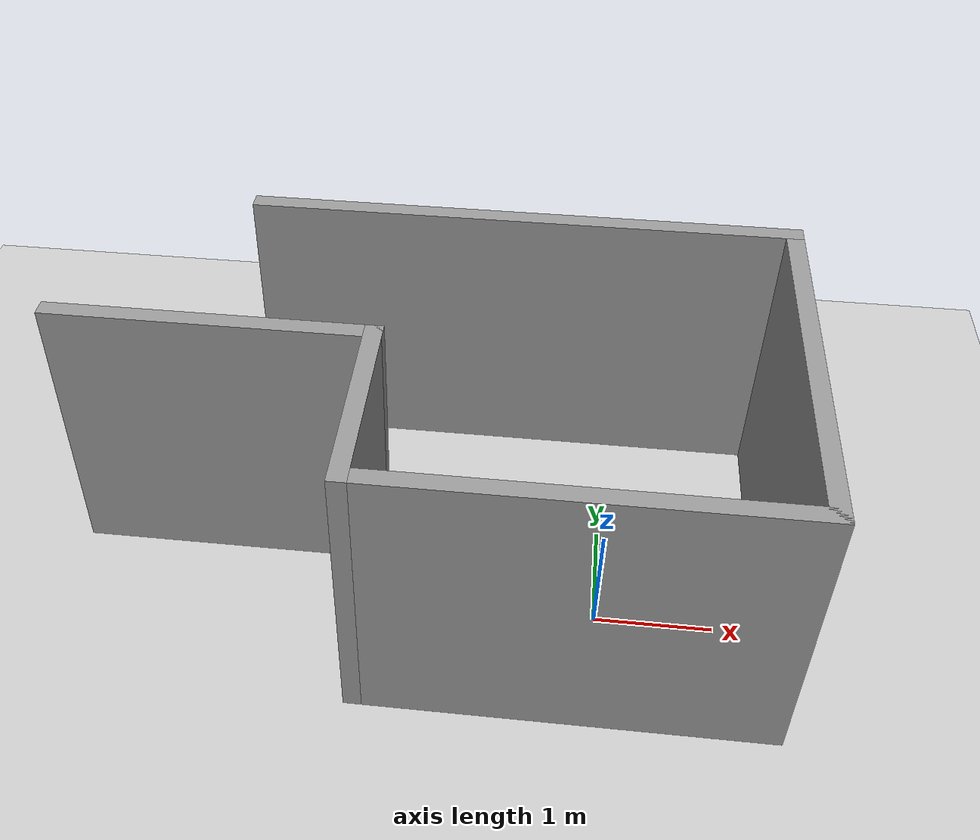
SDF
<sdf version="1.7">
 <world name="default">
  <light name="sun" type="directional">
   <pose>0 0 10 0 -0 0</pose>
   <diffuse>0.8 0.8 0.8 1</diffuse>
   <specular>0.2 0.2 0.2 1</specular>
   <attenuation>
    <range>1000</range>
    <constant>0.9</constant>
    <linear>0.01</linear>
    <quadratic>0.001</quadratic>
   </attenuation>
   <direction>-0.5 0.1 -0.9</direction>
   <spot><inner_angle>0</inner_angle><outer_angle>0</outer_angle><falloff>0</falloff></spot>
  </light>
  <model name="ground_plane">
   <static>1</static>
   <link name="link">
    <collision name="collision">
     <geometry><plane><normal>0 0 1</normal><size>100 100</size></plane></geometry>
     <surface>
      <contact><collide_bitmask>65535</collide_bitmask></contact>
      <friction><ode><mu>100</mu><mu2>50</mu2></ode></friction>
     </surface>
    </collision>
    <visual name="visual">
     <cast_shadows>0</cast_shadows>
     <geometry><plane><normal>0 0 1</normal><size>100 100</size></plane></geometry>
     <material>
      <script><uri>file://media/materials/scripts/gazebo.material</uri><name>Gazebo/Grey</name></script>
     </material>
    </visual>
   </link>
  </model>
  <gravity>0 0 -9.8</gravity>
  <magnetic_field>6e-06 2.3e-05 -4.2e-05</magnetic_field>
  <atmosphere type="adiabatic"/>
  <physics type="ode">
   <max_step_size>0.001</max_step_size>
   <real_time_factor>1</real_time_factor>
   <real_time_update_rate>1000</real_time_update_rate>
  </physics>
  <scene><ambient>0.4 0.4 0.4 1</ambient><background>0.7 0.7 0.7 1</background><shadows>1</shadows></scene>
  <spherical_coordinates>
   <surface_model>EARTH_WGS84</surface_model>
   <latitude_deg>0</latitude_deg>
   <longitude_deg>0</longitude_deg>
   <elevation>0</elevation>
   <heading_deg>0</heading_deg>
  </spherical_coordinates>
  <model name="Untitled1">
   <pose>-1.545 0.645 0 0 -0 0</pose>
   <link name="Wall_10">
    <collision name="Wall_10_Collision">
     <geometry><box><size>3.5 0.15 2.5</size></box></geometry>
     <pose>0 0 1.25 0 -0 0</pose>
    </collision>
    <visual name="Wall_10_Visual">
     <pose>0 0 1.25 0 -0 0</pose>
     <geometry><box><size>3.5 0.15 2.5</size></box></geometry>
     <material>
      <script><uri>file://media/materials/scripts/gazebo.material</uri><name>Gazebo/Grey</name></script>
      <ambient>1 1 1 1</ambient>
     </material>
     <meta><layer>0</layer></meta>
    </visual>
    <pose>2.975 0 0 0 -0 -1.5708</pose>
   </link>
   <link name="Wall_11">
    <collision name="Wall_11_Collision">
     <geometry><box><size>3.5 0.15 2.5</size></box></geometry>
     <pose>0 0 1.25 0 -0 0</pose>
    </collision>
    <visual name="Wall_11_Visual">
     <pose>0 0 1.25 0 -0 0</pose>
     <geometry><box><size>3.5 0.15 2.5</size></box></geometry>
     <material>
      <script><uri>file://media/materials/scripts/gazebo.material</uri><name>Gazebo/Grey</name></script>
      <ambient>1 1 1 1</ambient>
     </material>
     <meta><layer>0</layer></meta>
    </visual>
    <pose>1.3 -1.675 0 0 -0 3.14159</pose>
   </link>
   <link name="Wall_12">
    <collision name="Wall_12_Collision">
     <geometry><box><size>1.75 0.15 2.5</size></box></geometry>
     <pose>0 0 1.25 0 -0 0</pose>
    </collision>
    <visual name="Wall_12_Visual">
     <pose>0 0 1.25 0 -0 0</pose>
     <geometry><box><size>1.75 0.15 2.5</size></box></geometry>
     <material>
      <script><uri>file://media/materials/scripts/gazebo.material</uri><name>Gazebo/Grey</name></script>
      <ambient>1 1 1 1</ambient>
     </material>
     <meta><layer>0</layer></meta>
    </visual>
    <pose>-0.375 -0.875 0 0 -0 1.5708</pose>
   </link>
   <link name="Wall_13">
    <collision name="Wall_13_Collision">
     <geometry><box><size>2.75 0.15 2.5</size></box></geometry>
     <pose>0 0 1.25 0 -0 0</pose>
    </collision>
    <visual name="Wall_13_Visual">
     <pose>0 0 1.25 0 -0 0</pose>
     <geometry><box><size>2.75 0.15 2.5</size></box></geometry>
     <material>
      <script><uri>file://media/materials/scripts/gazebo.material</uri><name>Gazebo/Grey</name></script>
      <ambient>1 1 1 1</ambient>
     </material>
     <meta><layer>0</layer></meta>
    </visual>
    <pose>-1.675 -0.075 0 0 -0 3.14159</pose>
   </link>
   <link name="Wall_9">
    <collision name="Wall_9_Collision">
     <geometry><box><size>4.75 0.15 2.5</size></box></geometry>
     <pose>0 0 1.25 0 -0 0</pose>
    </collision>
    <visual name="Wall_9_Visual">
     <pose>0 0 1.25 0 -0 0</pose>
     <geometry><box><size>4.75 0.15 2.5</size></box></geometry>
     <material>
      <script><uri>file://media/materials/scripts/gazebo.material</uri><name>Gazebo/Grey</name></script>
      <ambient>1 1 1 1</ambient>
     </material>
     <meta><layer>0</layer></meta>
    </visual>
    <pose>0.675 1.675 0 0 -0 0</pose>
   </link>
   <static>1</static>
  </model>
 </world>
</sdf>
